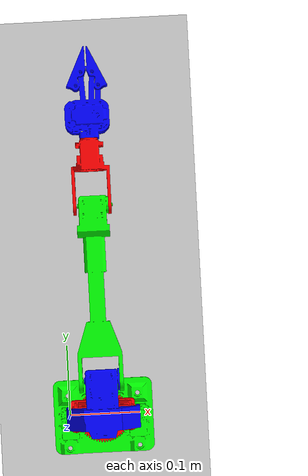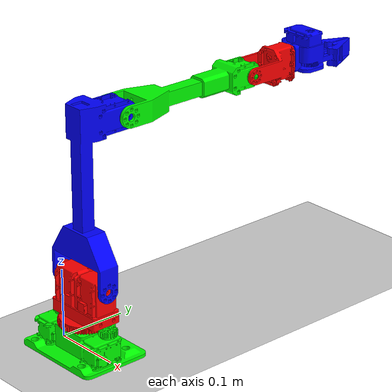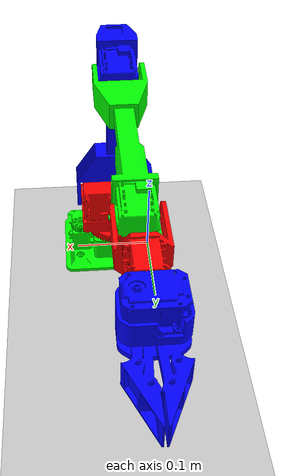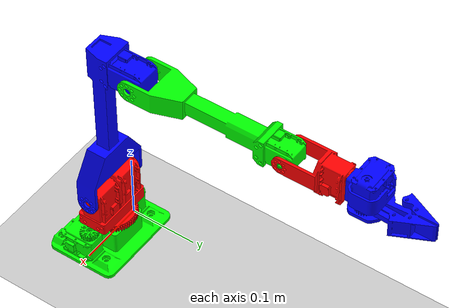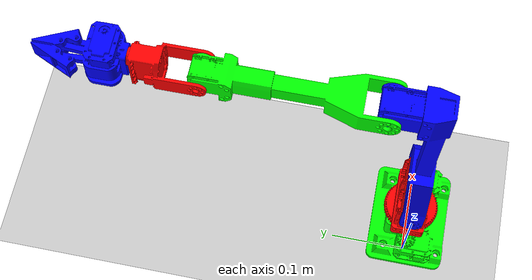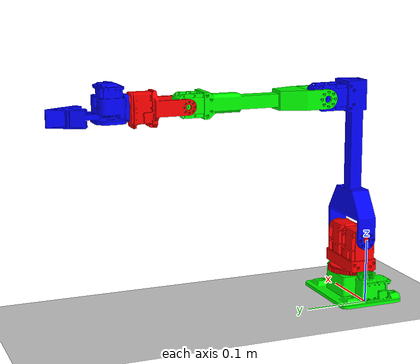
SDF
<?xml version="1.0" ?>
<sdf version="1.8">
    <world name="carbon_pipe">
        <physics name="1ms" type="ignored">
            <max_step_size>0.001</max_step_size>
            <real_time_factor>1.0</real_time_factor>
        </physics>
        <plugin
            filename="libignition-gazebo-physics-system.so"
            name="ignition::gazebo::systems::Physics">
        </plugin>
        <plugin
            filename="libignition-gazebo-user-commands-system.so"
            name="ignition::gazebo::systems::UserCommands">
        </plugin>
        <plugin
            filename="libignition-gazebo-scene-broadcaster-system.so"
            name="ignition::gazebo::systems::SceneBroadcaster">
        </plugin>

         <gui fullscreen="0">

        <!-- 3D scene -->
        <plugin filename="GzScene3D" name="3D View">
            <ignition-gui>
            <title>3D View</title>
            <property type="bool" key="showTitleBar">false</property>
            <property type="string" key="state">docked</property>
            </ignition-gui>

            <engine>ogre2</engine>
            <scene>scene</scene>
            <ambient_light>0.4 0.4 0.4</ambient_light>
            <background_color>0.8 0.8 0.8</background_color>
            <camera_pose>2 2 2 0 0.5 -2.5</camera_pose>
        </plugin>

        <!-- World control -->
        <plugin filename="WorldControl" name="World control">
            <ignition-gui>
            <title>World control</title>
            <property type="bool" key="showTitleBar">false</property>
            <property type="bool" key="resizable">false</property>
            <property type="double" key="height">72</property>
            <property type="double" key="width">121</property>
            <property type="double" key="z">1</property>

            <property type="string" key="state">floating</property>
            <anchors target="3D View">
                <line own="left" target="left"/>
                <line own="bottom" target="bottom"/>
            </anchors>
            </ignition-gui>

            <play_pause>true</play_pause>
            <step>true</step>
            <start_paused>true</start_paused>

        </plugin>

        <!-- World statistics -->
        <plugin filename="WorldStats" name="World stats">
            <ignition-gui>
            <title>World stats</title>
            <property type="bool" key="showTitleBar">false</property>
            <property type="bool" key="resizable">false</property>
            <property type="double" key="height">110</property>
            <property type="double" key="width">290</property>
            <property type="double" key="z">1</property>

            <property type="string" key="state">floating</property>
            <anchors target="3D View">
                <line own="right" target="right"/>
                <line own="bottom" target="bottom"/>
            </anchors>
            </ignition-gui>

            <sim_time>true</sim_time>
            <real_time>true</real_time>
            <real_time_factor>true</real_time_factor>
            <iterations>true</iterations>
        </plugin>

        <plugin filename="JointPositionController" name="JointPositionController">
            <ignition-gui>
            <property type="double" key="height">600</property>
            <property type="double" key="width">400</property>

            <property type="string" key="state">floating</property>
            <anchors target="3D View">
                <line own="right" target="right"/>
                <line own="top" target="top"/>
            </anchors>
            </ignition-gui>
            <model_name>assembly_urdf</model_name>
        </plugin>
        </gui>

        <light type="directional" name="sun">
            <cast_shadows>true</cast_shadows>
            <pose>0 0 10 0 0 0</pose>
            <diffuse>0.8 0.8 0.8 1</diffuse>
            <specular>0.2 0.2 0.2 1</specular>
            <attenuation>
                <range>1000</range>
                <constant>0.9</constant>
                <linear>0.01</linear>
                <quadratic>0.001</quadratic>
            </attenuation>
            <direction>-0.5 0.1 -0.9</direction>
        </light>

        <model name="ground_plane">
            <static>true</static>
            <link name="link">
                <collision name="collision">
                <geometry>
                    <plane>
                    <normal>0 0 1</normal>
                    </plane>
                </geometry>
                </collision>
                <visual name="visual">
                <geometry>
                    <plane>
                    <normal>0 0 1</normal>
                    <size>1000 1000</size>
                    </plane>
                </geometry>
                <material>
                    <ambient>0.8 0.8 0.8 1</ambient>
                    <diffuse>0.8 0.8 0.8 1</diffuse>
                    <specular>0.8 0.8 0.8 1</specular>
                </material>
                </visual>
            </link>
        </model>
        <model name='assembly_urdf'>
            <joint name="weld" type="fixed">
                <pose>0 0 0.0 0 0 0</pose>
                <parent>world</parent>
                <child>base_link</child>
            </joint>
            <link name='base_link'>
                <pose>0 0 0.02 0 0 0</pose>
              <inertial>
                <pose>0.04799993216352116 -0.005129619158982985 -0.003911773006344198 0 0 0</pose>
                <mass>0.000016065120204988459</mass>
                <inertia>
                  <ixx>0.0011720000000000001</ixx>
                  <ixy>0</ixy>
                  <ixz>0</ixz>
                  <iyy>0.0030339999999999998</iyy>
                  <iyz>2.3e-05</iyz>
                  <izz>0.0037209999999999999</izz>
                </inertia>
              </inertial>
              <collision name='base_link_collision'>
                <pose>0 0 0.0 0 0 0</pose>
                <geometry>
                  <mesh>
                    <scale>0.001 0.001 0.001</scale>
                    <uri>base_link.obj</uri>
                  </mesh>
                </geometry>
              </collision>
              <visual name='base_link_visual'>
                <pose>0 0 0.0 0 0 0</pose>
                <geometry>
                  <mesh>
                    <scale>0.001 0.001 0.001</scale>
                    <uri>base_link.stl</uri>
                  </mesh>
                </geometry>
                    <material>
                        <ambient>0.0 1 0.0 1</ambient>
                        <diffuse>0.0 1 0.0 1</diffuse>
                        <specular>0.0 1 0.0 1</specular>
                    </material>
              </visual>
            </link>
            <joint name='Revolute 1' type='revolute'>
              <pose relative_to='base_link'>0.048 0 0.018 0 0 0</pose>
              <parent>base_link</parent>
              <child>1st_link_1_1</child>
              <axis>
                <xyz>0 0 1</xyz>
                <limit>
                  <lower>-3.14</lower>
                  <upper>3.14</upper>
                </limit>
                <dynamics>
                  <spring_reference>0</spring_reference>
                  <spring_stiffness>0</spring_stiffness>
                </dynamics>
              </axis>
            </joint>
            <link name='1st_link_1_1'>
              <pose relative_to='Revolute 1'>0 0 0 0 0 0</pose>
              <inertial>
                <pose>-0.0001616472558962426 0.001245184024056535 0.03492814681823998 0 0 0</pose>
                <mass>0.00001730207207490065</mass>
                <inertia>
                  <ixx>0.001122</ixx>
                  <ixy>0</ixy>
                  <ixz>-9.9999999999999995e-07</ixz>
                  <iyy>0.0019170000000000001</iyy>
                  <iyz>-1.5999999999999999e-05</iyz>
                  <izz>0.001281</izz>
                </inertia>
              </inertial>
              <collision name='1st_link_1_1_collision'>
                <pose>-0.048 0 -0.018 0 0 0</pose>
                <geometry>
                  <mesh>
                    <scale>0.001 0.001 0.001</scale>
                    <uri>1st_link_1_1.obj</uri>
                  </mesh>
                </geometry>
              </collision>
              <visual name='1st_link_1_1_visual'>
                <pose>-0.048 0 -0.018 0 0 0</pose>
                <geometry>
                  <mesh>
                    <scale>0.001 0.001 0.001</scale>
                    <uri>1st_link_1_1.stl</uri>
                  </mesh>
                </geometry>
                    <material>
                        <ambient>1.0 0 0.0 1</ambient>
                        <diffuse>1.0 0 0.0 1</diffuse>
                        <specular>1.0 0 0.0 1</specular>
                    </material>
              </visual>
            </link>
            <joint name='Revolute 2' type='revolute'>
              <pose relative_to='1st_link_1_1'>0.045648 0.001554 0.06320000000000001 0 0 0</pose>
              <parent>1st_link_1_1</parent>
              <child>2nd_link_1_1</child>
              <axis>
                <xyz>-1 0 0</xyz>
                <limit>
                  <lower>-3.14</lower>
                  <upper>3.14</upper>
                </limit>
                <dynamics>
                  <spring_reference>0</spring_reference>
                  <spring_stiffness>0</spring_stiffness>
                </dynamics>
              </axis>
            </joint>
            <link name='2nd_link_1_1'>
              <pose relative_to='Revolute 2'>0 0 0 0 0 0</pose>
              <inertial>
                <pose>-0.04568002698242451 0.01182964688310641 0.1397808496024999 0 0 0</pose>
                <mass>0.000022634076873991789</mass>
                <inertia>
                  <ixx>0.016591000000000002</ixx>
                  <ixy>-1.2999999999999999e-05</ixy>
                  <ixz>3.4999999999999997e-05</ixz>
                  <iyy>0.016326</iyy>
                  <iyz>-0.0022309999999999999</iyz>
                  <izz>0.00191</izz>
                </inertia>
              </inertial>
              <collision name='2nd_link_1_1_collision'>
                <pose>-0.093648 -0.001554 -0.08119999999999999 0 0 0</pose>
                <geometry>
                  <mesh>
                    <scale>0.001 0.001 0.001</scale>
                    <uri>2nd_link_1_1.obj</uri>
                  </mesh>
                </geometry>
              </collision>
              <visual name='2nd_link_1_1_visual'>
                <pose>-0.093648 -0.001554 -0.08119999999999999 0 0 0</pose>
                <geometry>
                  <mesh>
                    <scale>0.001 0.001 0.001</scale>
                    <uri>2nd_link_1_1.stl</uri>
                  </mesh>
                </geometry>
                    <material>
                        <ambient>0.0 0 1.0 1</ambient>
                        <diffuse>0.0 0 1.0 1</diffuse>
                        <specular>0.0 0 1.0 1</specular>
                    </material>
              </visual>
            </link>
            <joint name='Revolute 3' type='revolute'>
              <pose relative_to='2nd_link_1_1'>-0.022 0.0601 0.2229 0 0 0</pose>
              <parent>2nd_link_1_1</parent>
              <child>3rd_link_1_1</child>
              <axis>
                <xyz>-1 0 0</xyz>
                <limit>
                  <lower>-3.14</lower>
                  <upper>3.14</upper>
                </limit>
                <dynamics>
                  <spring_reference>0</spring_reference>
                  <spring_stiffness>0</spring_stiffness>
                </dynamics>
              </axis>
            </joint>
            <link name='3rd_link_1_1'>
              <pose relative_to='Revolute 3'>0 0 0 0 0 0</pose>
              <inertial>
                <pose>-0.02340335350464721 0.1224355831045718 -2.818962660522395e-07 0 0 0</pose>
                <mass>0.00001402290032769806</mass>
                <inertia>
                  <ixx>0.007273</ixx>
                  <ixy>-1.5999999999999999e-05</ixy>
                  <ixz>0</ixz>
                  <iyy>0.00031399999999999999</iyy>
                  <iyz>0</iyz>
                  <izz>0.0073980000000000001</izz>
                </inertia>
              </inertial>
              <collision name='3rd_link_1_1_collision'>
                <pose>-0.071648 -0.061654 -0.3041 0 0 0</pose>
                <geometry>
                  <mesh>
                    <scale>0.001 0.001 0.001</scale>
                    <uri>3rd_link_1_1.obj</uri>
                  </mesh>
                </geometry>
              </collision>
              <visual name='3rd_link_1_1_visual'>
                <pose>-0.071648 -0.061654 -0.3041 0 0 0</pose>
                <geometry>
                  <mesh>
                    <scale>0.001 0.001 0.001</scale>
                    <uri>3rd_link_1_1.stl</uri>
                  </mesh>
                </geometry>
                    <material>
                        <ambient>0.0 1 0.0 1</ambient>
                        <diffuse>0.0 1 0.0 1</diffuse>
                        <specular>0.0 1 0.0 1</specular>
                    </material>
              </visual>
            </link>
            <joint name='Revolute 4' type='revolute'>
              <pose relative_to='3rd_link_1_1'>-0.003 0.2236 0 0 0 0</pose>
              <parent>3rd_link_1_1</parent>
              <child>4th_link_1_1</child>
              <axis>
                <xyz>-1 0 0</xyz>
                <limit>
                  <lower>-3.14</lower>
                  <upper>3.14</upper>
                </limit>
                <dynamics>
                  <spring_reference>0</spring_reference>
                  <spring_stiffness>0</spring_stiffness>
                </dynamics>
              </axis>
            </joint>
            <link name='4th_link_1_1'>
              <pose relative_to='Revolute 4'>0 0 0 0 0 0</pose>
              <inertial>
                <pose>-0.02050009508173301 0.05674528690423336 -0.0008307043317481999 0 0 0</pose>
                <mass>0.0000045912689139442109</mass>
                <inertia>
                  <ixx>0.00025700000000000001</ixx>
                  <ixy>0</ixy>
                  <ixz>0</ixz>
                  <iyy>0.00014200000000000001</iyy>
                  <iyz>-1.9999999999999999e-06</iyz>
                  <izz>0.00025399999999999999</izz>
                </inertia>
              </inertial>
              <collision name='4th_link_1_1_collision'>
                <pose>-0.068648 -0.285254 -0.3041 0 0 0</pose>
                <geometry>
                  <mesh>
                    <scale>0.001 0.001 0.001</scale>
                    <uri>4th_link_1_1.obj</uri>
                  </mesh>
                </geometry>
              </collision>
              <visual name='4th_link_1_1_visual'>
                <pose>-0.068648 -0.285254 -0.3041 0 0 0</pose>
                <geometry>
                  <mesh>
                    <scale>0.001 0.001 0.001</scale>
                    <uri>4th_link_1_1.stl</uri>
                  </mesh>
                </geometry>
                    <material>
                        <ambient>1.0 0 0.0 1</ambient>
                        <diffuse>1.0 0 0.0 1</diffuse>
                        <specular>1.0 0 0.0 1</specular>
                    </material>
              </visual>
            </link>
            <joint name='Revolute 5' type='revolute'>
              <pose relative_to='4th_link_1_1'>-0.0205 0.08550000000000001 0.0105 0 0 0</pose>
              <parent>4th_link_1_1</parent>
              <child>5th_link_1_1</child>
              <axis>
                <xyz>0 -1 0</xyz>
                <limit>
                  <lower>-3.14</lower>
                  <upper>3.14</upper>
                </limit>
                <dynamics>
                  <spring_reference>0</spring_reference>
                  <spring_stiffness>0</spring_stiffness>
                </dynamics>
              </axis>
            </joint>
            <link name='5th_link_1_1'>
              <pose relative_to='Revolute 5'>0 0 0 0 0 0</pose>
              <inertial>
                <pose>0.001170272613197638 0.03862175618756147 -0.005537904034870422 0 0 0</pose>
                <mass>0.0000082230868550588532</mass>
                <inertia>
                  <ixx>0.00076499999999999995</ixx>
                  <ixy>-9.9999999999999995e-07</ixy>
                  <ixz>3.0000000000000001e-06</ixz>
                  <iyy>0.00036299999999999999</iyy>
                  <iyz>0.00012899999999999999</iyz>
                  <izz>0.00072099999999999996</izz>
                </inertia>
              </inertial>
              <collision name='5th_link_1_1_collision'>
                <pose>-0.048148 -0.370754 -0.3146 0 0 0</pose>
                <geometry>
                  <mesh>
                    <scale>0.001 0.001 0.001</scale>
                    <uri>5th_link_1_1.obj</uri>
                  </mesh>
                </geometry>
              </collision>
              <visual name='5th_link_1_1_visual'>
                <pose>-0.048148 -0.370754 -0.3146 0 0 0</pose>
                <geometry>
                  <mesh>
                    <scale>0.001 0.001 0.001</scale>
                    <uri>5th_link_1_1.stl</uri>
                  </mesh>
                </geometry>
                    <material>
                        <ambient>0.0 0 1.0 1</ambient>
                        <diffuse>0.0 0 1.0 1</diffuse>
                        <specular>0.0 0 1.0 1</specular>
                    </material>
              </visual>
            </link>
            <plugin
                filename="ignition-gazebo-joint-position-controller-system"
                name="gz::sim::systems::JointPositionController">
                <joint_name>Revolute 1</joint_name>
                <topic>rotor_cmd1</topic>
                <p_gain>1</p_gain>
                <i_gain>0.1</i_gain>
                <d_gain>0.2</d_gain>
                <i_max>1</i_max>
                <i_min>-1</i_min>
                <cmd_max>10</cmd_max>
                <cmd_min>-10</cmd_min>
            </plugin>
            <plugin
                filename="ignition-gazebo-joint-position-controller-system"
                name="gz::sim::systems::JointPositionController">
                <joint_name>Revolute 2</joint_name>
                <topic>rotor_cmd2</topic>
                <p_gain>1</p_gain>
                <i_gain>0.1</i_gain>
                <d_gain>0.2</d_gain>
                <i_max>1</i_max>
                <i_min>-1</i_min>
                <cmd_max>10</cmd_max>
                <cmd_min>-10</cmd_min>
            </plugin>
            <plugin
                filename="ignition-gazebo-joint-position-controller-system"
                name="gz::sim::systems::JointPositionController">
                <joint_name>Revolute 3</joint_name>
                <topic>rotor_cmd3</topic>
                <p_gain>1</p_gain>
                <i_gain>0.1</i_gain>
                <d_gain>0.2</d_gain>
                <i_max>1</i_max>
                <i_min>-1</i_min>
                <cmd_max>10</cmd_max>
                <cmd_min>-10</cmd_min>
            </plugin>
            <plugin
                filename="ignition-gazebo-joint-position-controller-system"
                name="gz::sim::systems::JointPositionController">
                <joint_name>Revolute 4</joint_name>
                <topic>rotor_cmd4</topic>
                <p_gain>1</p_gain>
                <i_gain>0.1</i_gain>
                <d_gain>0.2</d_gain>
                <i_max>1</i_max>
                <i_min>-1</i_min>
                <cmd_max>10</cmd_max>
                <cmd_min>-10</cmd_min>
            </plugin>
            <plugin
                filename="ignition-gazebo-joint-position-controller-system"
                name="gz::sim::systems::JointPositionController">
                <joint_name>Revolute 5</joint_name>
                <topic>rotor_cmd5</topic>
                <p_gain>1</p_gain>
                <i_gain>0.1</i_gain>
                <d_gain>0.1</d_gain>
                <i_max>1</i_max>
                <i_min>-1</i_min>
                <cmd_max>10</cmd_max>
                <cmd_min>-10</cmd_min>
            </plugin>
          </model>

    </world>
</sdf>
